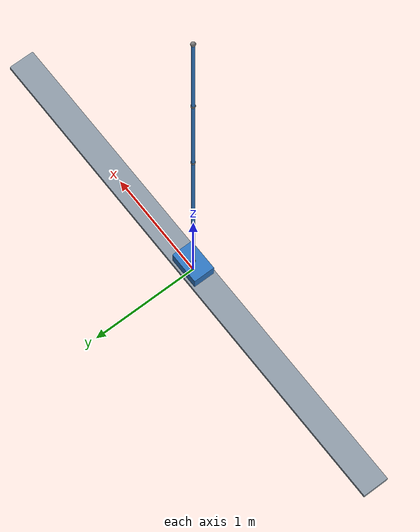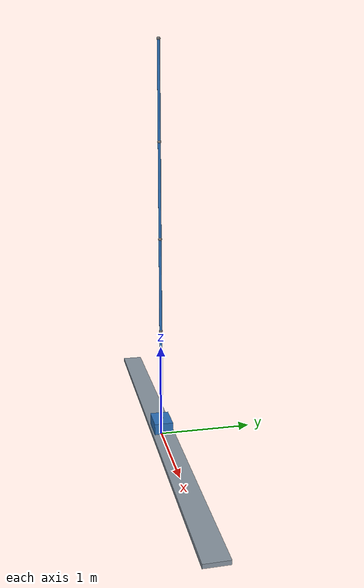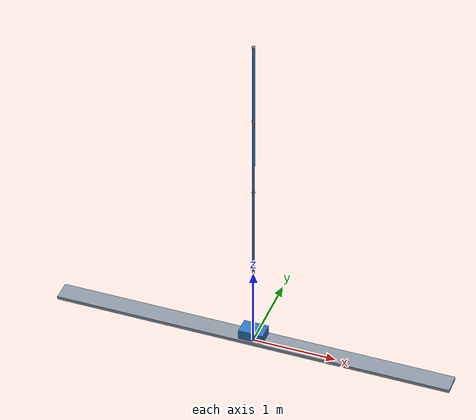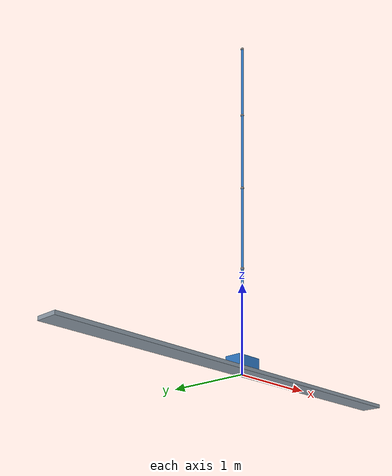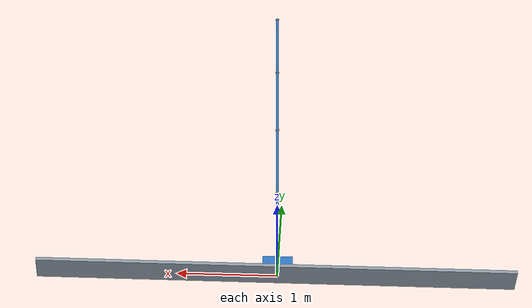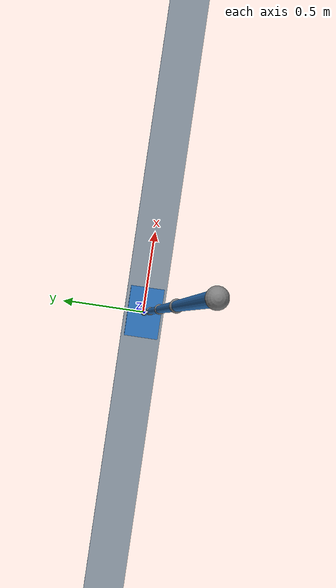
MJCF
<!-- Serial N-link extension: relative hinges, one cart force, non-colliding ideal uniform rods. -->
<mujoco model="cartpole-serial-4-uniform-rods">
  <compiler angle="radian" inertiafromgeom="false" />
  <option timestep="0.005" gravity="0 0 -9.8" integrator="Euler" />
  <default>
    <joint damping="0" armature="0" frictionloss="0" />
    <geom contype="0" conaffinity="0" />
  </default>
  <worldbody>
    <geom name="rail" type="box" pos="0 0 0.04" size="2.4 0.12 0.02" rgba="0.55 0.6 0.65 1" />
    <body name="cart" pos="0 0 0.12">
      <joint name="cart_slide" type="slide" axis="1 0 0" limited="false" />
      <inertial pos="0 0 0" mass="1.0" diaginertia="0.01 0.01 0.01" />
      <geom name="cart_visual" type="box" size="0.15 0.1 0.06" rgba="0.18 0.46 0.75 1" />
      <body name="pole" pos="0 0 0.06">
        <joint name="pole_hinge" type="hinge" axis="0 1 0" limited="false" />
        <inertial pos="0 0 0.5" mass="0.1" diaginertia="0.008333333333333333 0.008333333333333333 1e-08" />
        <geom name="pole_visual" type="capsule" fromto="0 0 0 0 0 1.0" size="0.015" rgba="0.18 0.46 0.75 1" />
        <site name="pivot" pos="0 0 0" size="0.02" />
        <site name="pole_tip" pos="0 0 1.0" size="0.02" />
        <body name="pole_2" pos="0 0 1.0">
          <joint name="pole_hinge_2" type="hinge" axis="0 1 0" limited="false" />
          <inertial pos="0 0 0.5" mass="0.1" diaginertia="0.008333333333333333 0.008333333333333333 1e-08" />
          <geom name="pole_visual_2" type="capsule" fromto="0 0 0 0 0 1.0" size="0.015" rgba="0.18 0.46 0.75 1" />
          <site name="pivot_2" pos="0 0 0" size="0.02" />
          <site name="pole_tip_2" pos="0 0 1.0" size="0.02" />
          <body name="pole_3" pos="0 0 1.0">
            <joint name="pole_hinge_3" type="hinge" axis="0 1 0" limited="false" />
            <inertial pos="0 0 0.5" mass="0.1" diaginertia="0.008333333333333333 0.008333333333333333 1e-08" />
            <geom name="pole_visual_3" type="capsule" fromto="0 0 0 0 0 1.0" size="0.015" rgba="0.18 0.46 0.75 1" />
            <site name="pivot_3" pos="0 0 0" size="0.02" />
            <site name="pole_tip_3" pos="0 0 1.0" size="0.02" />
            <body name="pole_4" pos="0 0 1.0">
              <joint name="pole_hinge_4" type="hinge" axis="0 1 0" limited="false" />
              <inertial pos="0 0 0.5" mass="0.1" diaginertia="0.008333333333333333 0.008333333333333333 1e-08" />
              <geom name="pole_visual_4" type="capsule" fromto="0 0 0 0 0 1.0" size="0.015" rgba="0.18 0.46 0.75 1" />
              <site name="pivot_4" pos="0 0 0" size="0.02" />
              <site name="pole_tip_4" pos="0 0 1.0" size="0.02" />
            </body>
          </body>
        </body>
      </body>
    </body>
  </worldbody>
  <actuator>
    <motor name="cart_force" joint="cart_slide" gear="1" ctrllimited="false" />
  </actuator>
</mujoco>
